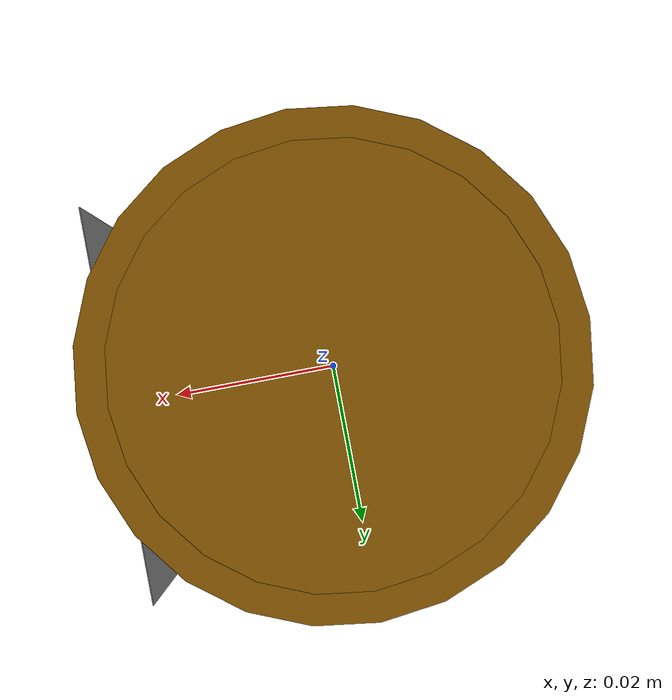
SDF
<?xml version="1.0" ?>
<sdf version="1.4">
    <model name='small_bottle'>
      <link name='link'>
        <inertial>
          <mass>0.05</mass>
          <inertia>
            <ixx>0.00058</ixx>
            <ixy>0</ixy>
            <ixz>0</ixz>
            <iyy>0.00058</iyy>
            <iyz>0</iyz>
            <izz>0.00016</izz>
          </inertia>
        </inertial>
        <visual name='top'>
          <pose>0 0 0.0555 0 0 0</pose>
          <geometry>
            <cylinder>
              <radius>0.019</radius>
              <length>0.016</length>
            </cylinder>
          </geometry>
          <material>
            <!-- color:orange -->
            <ambient>1 0.647 0 1</ambient>
            <diffuse>0.5 0.3235 0 1</diffuse>
            <specular>0.1 0.1 0.1 1</specular>
            <emissive>0 0 0 0</emissive>
          </material>
        </visual>
        <collision name='collision_top'>
          <pose>0 0 0.0555 0 0 0</pose>
          <geometry>
            <cylinder>
              <radius>0.019</radius>
              <length>0.016</length>
            </cylinder>
          </geometry>
          <max_contacts>10</max_contacts>
          <surface>
            <bounce>
              <restitution_coefficient>0.2</restitution_coefficient>
              <threshold>0</threshold>
            </bounce>
            <friction>
              <ode/>
            </friction>
            <contact>
              <ode>
                <kp>10000</kp>
                <max_vel>10</max_vel>
              </ode>
            </contact>
          </surface>
        </collision>
        <visual name='bottom'>
          <pose>0 0 0 0 0 0</pose>
          <geometry>
            <cylinder>
              <radius>0.0245</radius>
              <length>0.095</length>
            </cylinder>
          </geometry>
          <material>
            <ambient>1 0.7 0.3 1</ambient>
            <diffuse>0.5 0.3235 0 1</diffuse>
            <specular>0.1 0.1 0.1 1</specular>
            <emissive>0 0 0 0</emissive>
          </material>
        </visual>
        <collision name='collision_bottom'>
          <pose>0 0 0 0 0 0</pose>
          <geometry>
            <cylinder>
              <radius>0.0245</radius>
              <length>0.095</length>
            </cylinder>
          </geometry>
          <max_contacts>10</max_contacts>
          <surface>
            <bounce>
              <restitution_coefficient>0.2</restitution_coefficient>
              <threshold>0</threshold>
            </bounce>
            <friction>
              <ode/>
            </friction>
            <contact>
              <ode>
                <kp>100000</kp>
                <max_vel>10</max_vel>
              </ode>
            </contact>
          </surface>
        </collision>
        <velocity_decay>
          <linear>0</linear>
          <angular>0</angular>
        </velocity_decay>
        <self_collide>0</self_collide>
        <kinematic>0</kinematic>
        <gravity>1</gravity>
        <visual name='marker_4000'>
          <pose>0.0245 0 0.0 0 1.57 3.141</pose>
          <geometry>
            <box>
              <size>0.045 0.045 0.0001</size>
            </box>
          </geometry>

          <material>
            <script>
              <uri>model://marker/0001/scripts</uri>
              <uri>model://marker/0001/textures</uri>
              <name>Marker/0001</name>
            </script>
          </material>
        </visual>
      </link>
      <static>0</static>
    </model>
</sdf>
